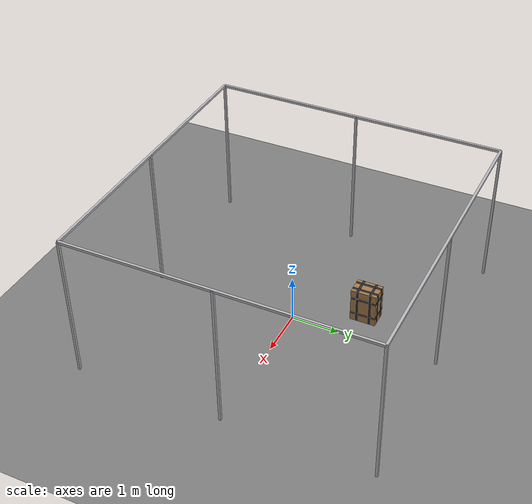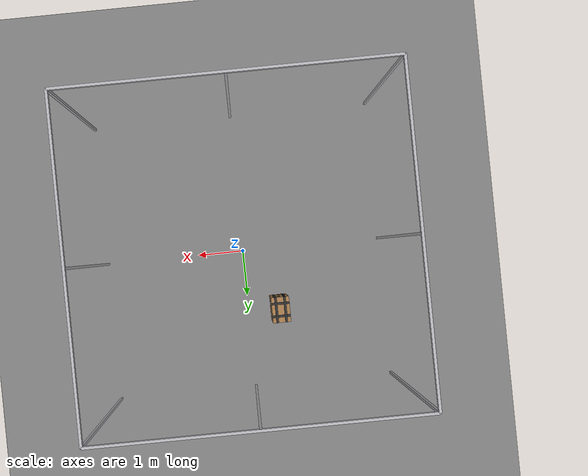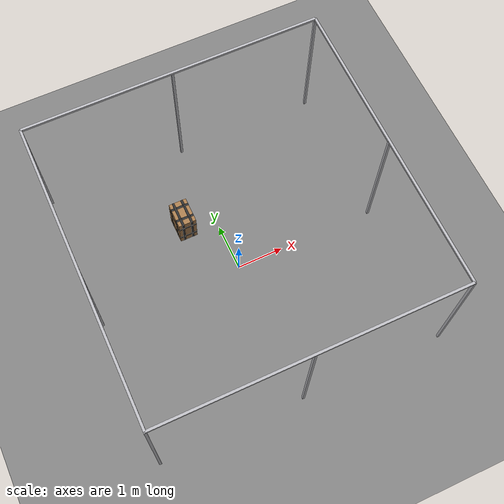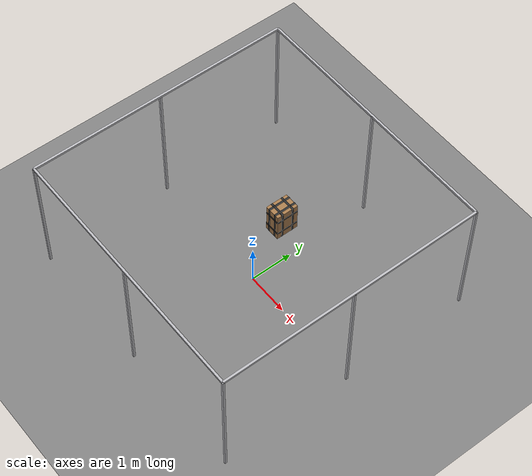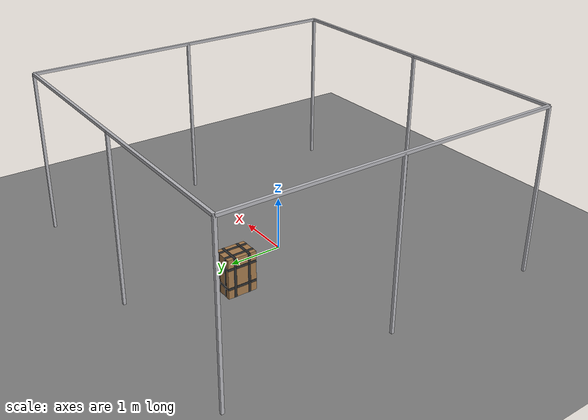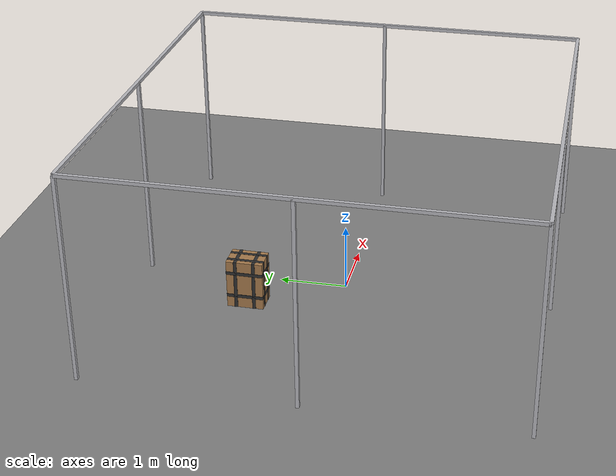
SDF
<sdf version="1.9">
 <world name="ecps295_lowbox_s31_monitor">
  <model name="ground_plane">
   <static>true</static>
   <link name="link">
    <collision name="collision">
     <geometry><plane><normal>0 0 1</normal><size>50 50</size></plane></geometry>
    </collision>
    <visual name="visual">
     <geometry><plane><normal>0 0 1</normal><size>50 50</size></plane></geometry>
     <material><ambient>0.5 0.5 0.5 1</ambient><diffuse>0.5 0.5 0.5 1</diffuse></material>
    </visual>
   </link>
  </model>
  <model name="cage_frame">
   <static>true</static>
   <link name="link">
    <visual name="post0_0">
     <pose>-3.050 -3.050 1.525 0 0 0.0000</pose>
     <geometry><box><size>0.050 0.050 3.050</size></box></geometry>
     <material><ambient>0.72 0.72 0.74 1</ambient><diffuse>0.72 0.72 0.74 1</diffuse></material>
    </visual>
    <visual name="post0_1">
     <pose>-3.050 0.000 1.525 0 0 0.0000</pose>
     <geometry><box><size>0.050 0.050 3.050</size></box></geometry>
     <material><ambient>0.72 0.72 0.74 1</ambient><diffuse>0.72 0.72 0.74 1</diffuse></material>
    </visual>
    <visual name="post0_2">
     <pose>-3.050 3.050 1.525 0 0 0.0000</pose>
     <geometry><box><size>0.050 0.050 3.050</size></box></geometry>
     <material><ambient>0.72 0.72 0.74 1</ambient><diffuse>0.72 0.72 0.74 1</diffuse></material>
    </visual>
    <visual name="post1_0">
     <pose>0.000 -3.050 1.525 0 0 0.0000</pose>
     <geometry><box><size>0.050 0.050 3.050</size></box></geometry>
     <material><ambient>0.72 0.72 0.74 1</ambient><diffuse>0.72 0.72 0.74 1</diffuse></material>
    </visual>
    <visual name="post1_2">
     <pose>0.000 3.050 1.525 0 0 0.0000</pose>
     <geometry><box><size>0.050 0.050 3.050</size></box></geometry>
     <material><ambient>0.72 0.72 0.74 1</ambient><diffuse>0.72 0.72 0.74 1</diffuse></material>
    </visual>
    <visual name="post2_0">
     <pose>3.050 -3.050 1.525 0 0 0.0000</pose>
     <geometry><box><size>0.050 0.050 3.050</size></box></geometry>
     <material><ambient>0.72 0.72 0.74 1</ambient><diffuse>0.72 0.72 0.74 1</diffuse></material>
    </visual>
    <visual name="post2_1">
     <pose>3.050 0.000 1.525 0 0 0.0000</pose>
     <geometry><box><size>0.050 0.050 3.050</size></box></geometry>
     <material><ambient>0.72 0.72 0.74 1</ambient><diffuse>0.72 0.72 0.74 1</diffuse></material>
    </visual>
    <visual name="post2_2">
     <pose>3.050 3.050 1.525 0 0 0.0000</pose>
     <geometry><box><size>0.050 0.050 3.050</size></box></geometry>
     <material><ambient>0.72 0.72 0.74 1</ambient><diffuse>0.72 0.72 0.74 1</diffuse></material>
    </visual>
    <visual name="railx0">
     <pose>0.000 -3.050 3.050 0 0 0.0000</pose>
     <geometry><box><size>6.100 0.050 0.050</size></box></geometry>
     <material><ambient>0.72 0.72 0.74 1</ambient><diffuse>0.72 0.72 0.74 1</diffuse></material>
    </visual>
    <visual name="raily0">
     <pose>-3.050 0.000 3.050 0 0 0.0000</pose>
     <geometry><box><size>0.050 6.100 0.050</size></box></geometry>
     <material><ambient>0.72 0.72 0.74 1</ambient><diffuse>0.72 0.72 0.74 1</diffuse></material>
    </visual>
    <visual name="railx1">
     <pose>0.000 3.050 3.050 0 0 0.0000</pose>
     <geometry><box><size>6.100 0.050 0.050</size></box></geometry>
     <material><ambient>0.72 0.72 0.74 1</ambient><diffuse>0.72 0.72 0.74 1</diffuse></material>
    </visual>
    <visual name="raily1">
     <pose>3.050 0.000 3.050 0 0 0.0000</pose>
     <geometry><box><size>0.050 6.100 0.050</size></box></geometry>
     <material><ambient>0.72 0.72 0.74 1</ambient><diffuse>0.72 0.72 0.74 1</diffuse></material>
    </visual>
   </link>
  </model>
  <model name="lb1">
   <static>true</static>
   <pose>-0.68 1.32 0.368 0 0 0</pose>
   <link name="link">
    <collision name="c"><geometry><box><size>0.38 0.54 0.74</size></box></geometry></collision>
    <visual name="v">
     <geometry><box><size>0.38 0.54 0.74</size></box></geometry>
     <material><ambient>0.65 0.48 0.30 1</ambient><diffuse>0.65 0.48 0.30 1</diffuse></material>
    </visual>
    <visual name="tape_ring0">
     <pose>0.000 0.000 -0.185 0 0 0</pose>
     <geometry><box><size>0.384 0.544 0.050</size></box></geometry>
     <material><ambient>0.18 0.18 0.18 1</ambient><diffuse>0.18 0.18 0.18 1</diffuse></material>
    </visual>
    <visual name="tape_bx0">
     <pose>-0.095 0.000 0.000 0 0 0</pose>
     <geometry><box><size>0.050 0.544 0.744</size></box></geometry>
     <material><ambient>0.18 0.18 0.18 1</ambient><diffuse>0.18 0.18 0.18 1</diffuse></material>
    </visual>
    <visual name="tape_by0">
     <pose>0.000 -0.135 0.000 0 0 0</pose>
     <geometry><box><size>0.384 0.050 0.744</size></box></geometry>
     <material><ambient>0.18 0.18 0.18 1</ambient><diffuse>0.18 0.18 0.18 1</diffuse></material>
    </visual>
    <visual name="tape_ring1">
     <pose>0.000 0.000 0.185 0 0 0</pose>
     <geometry><box><size>0.384 0.544 0.050</size></box></geometry>
     <material><ambient>0.18 0.18 0.18 1</ambient><diffuse>0.18 0.18 0.18 1</diffuse></material>
    </visual>
    <visual name="tape_bx1">
     <pose>0.095 0.000 0.000 0 0 0</pose>
     <geometry><box><size>0.050 0.544 0.744</size></box></geometry>
     <material><ambient>0.18 0.18 0.18 1</ambient><diffuse>0.18 0.18 0.18 1</diffuse></material>
    </visual>
    <visual name="tape_by1">
     <pose>0.000 0.135 0.000 0 0 0</pose>
     <geometry><box><size>0.384 0.050 0.744</size></box></geometry>
     <material><ambient>0.18 0.18 0.18 1</ambient><diffuse>0.18 0.18 0.18 1</diffuse></material>
    </visual>
   </link>
  </model>
 </world>
</sdf>
